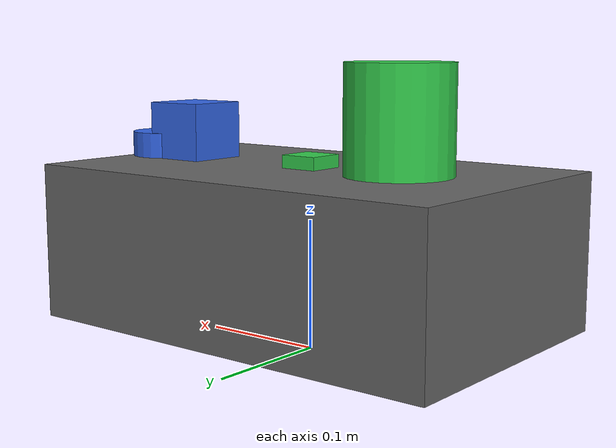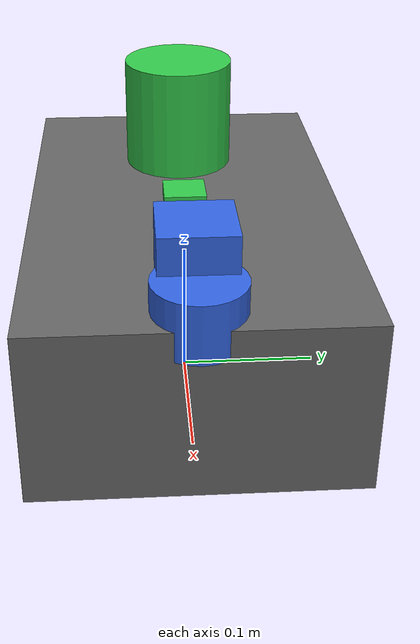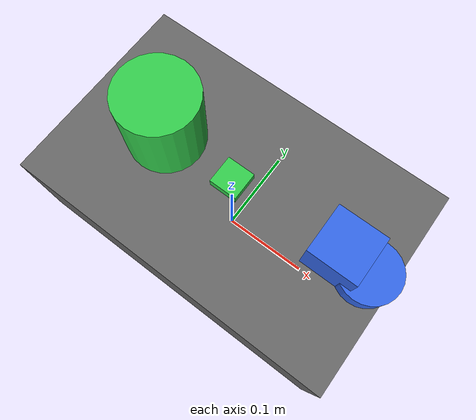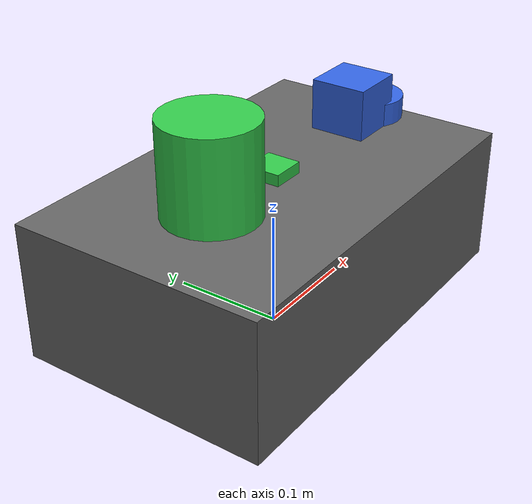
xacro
<?xml version="1.0"?>
<robot name="sim_sync_car" xmlns:xacro="http://www.ros.org/wiki/xacro">
  <material name="gray">
    <color rgba="0.4 0.4 0.4 1.0"/>
  </material>
  <material name="blue">
    <color rgba="0.2 0.4 0.9 1.0"/>
  </material>
  <material name="green">
    <color rgba="0.2 0.8 0.3 1.0"/>
  </material>

  <link name="base_link">
    <visual>
      <origin xyz="0 0 0.08" rpy="0 0 0"/>
      <geometry>
        <box size="0.35 0.22 0.12"/>
      </geometry>
      <material name="gray"/>
    </visual>
  </link>

  <link name="camera_link">
    <visual>
      <geometry>
        <box size="0.05 0.05 0.05"/>
      </geometry>
      <material name="blue"/>
    </visual>
  </link>
  <joint name="camera_joint" type="fixed">
    <parent link="base_link"/>
    <child link="camera_link"/>
    <origin xyz="0.12 0 0.16" rpy="0 0 0"/>
  </joint>

  <link name="imu_link">
    <visual>
      <geometry>
        <box size="0.03 0.03 0.02"/>
      </geometry>
      <material name="green"/>
    </visual>
  </link>
  <joint name="imu_joint" type="fixed">
    <parent link="base_link"/>
    <child link="imu_link"/>
    <origin xyz="0 0 0.14" rpy="0 0 0"/>
  </joint>

  <link name="laser_link">
    <visual>
      <geometry>
        <cylinder radius="0.03" length="0.04"/>
      </geometry>
      <material name="blue"/>
    </visual>
  </link>
  <joint name="laser_joint" type="fixed">
    <parent link="base_link"/>
    <child link="laser_link"/>
    <origin xyz="0.15 0 0.14" rpy="0 0 0"/>
  </joint>

  <link name="arm_base_link">
    <visual>
      <geometry>
        <cylinder radius="0.04" length="0.08"/>
      </geometry>
      <material name="green"/>
    </visual>
  </link>
  <joint name="arm_base_joint" type="fixed">
    <parent link="base_link"/>
    <child link="arm_base_link"/>
    <origin xyz="-0.08 0 0.18" rpy="0 0 0"/>
  </joint>
</robot>
